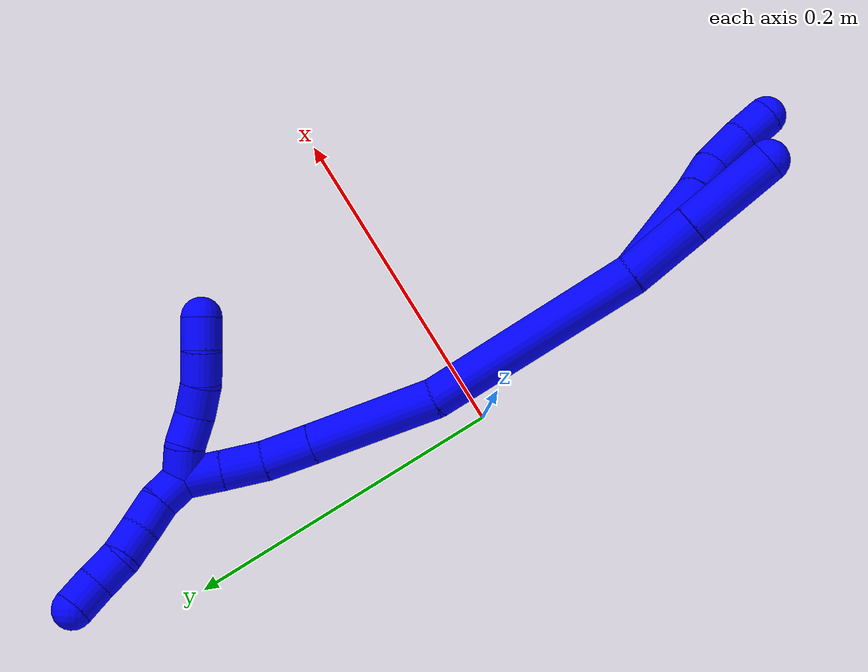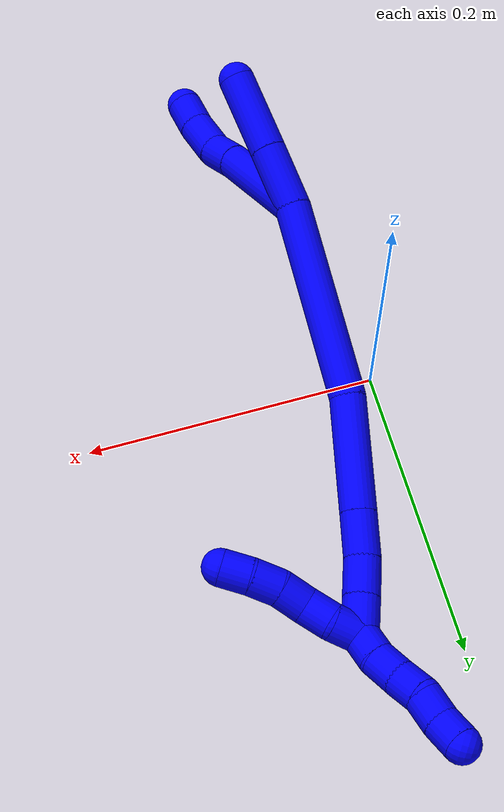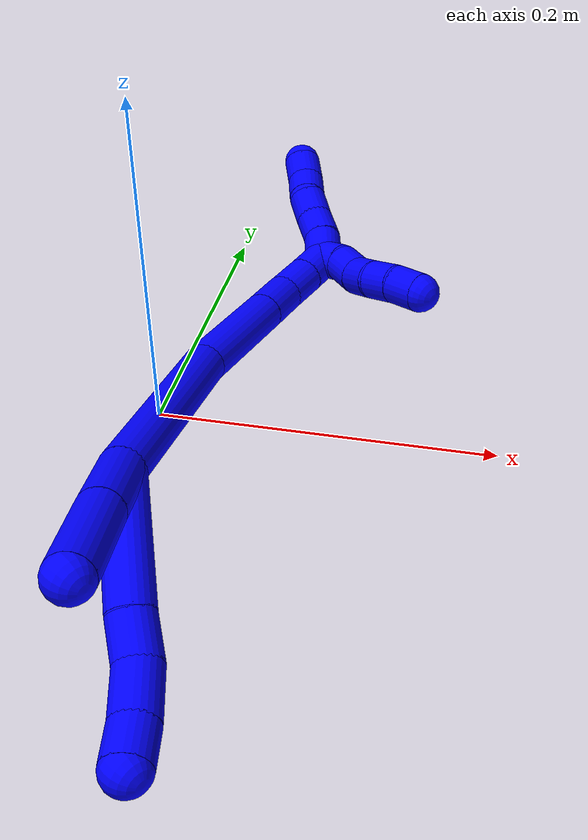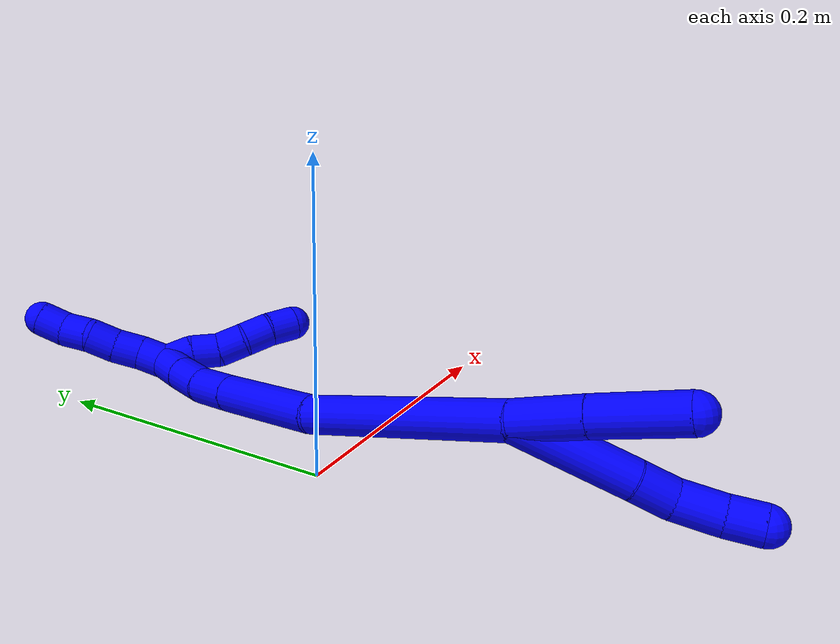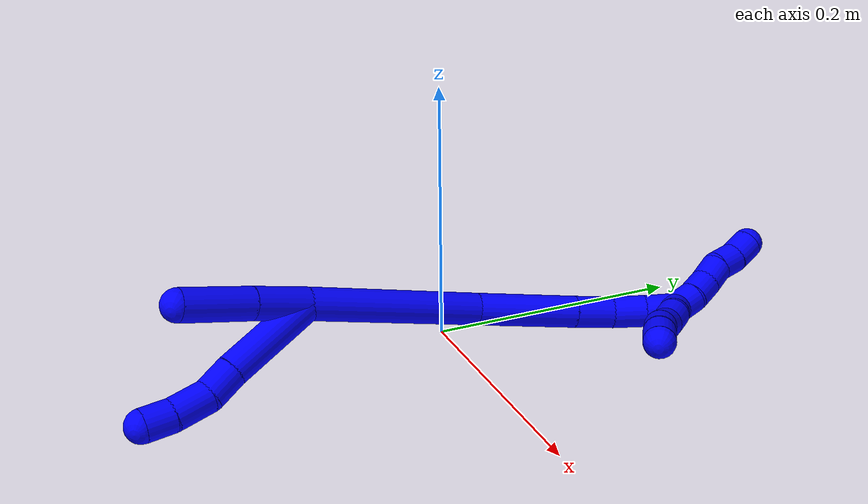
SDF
<sdf version="1.7">
 <world name="default">
  <model name="1">
   <static>0</static>
   <link name="1">
    <collision name="collision-cylinder-e_1_2_8">
     <pose>0.013427 -0.020258 0.02851 0.617774 0.366557 0.118159</pose>
     <geometry><cylinder><radius>0.0125</radius><length>0.074926</length></cylinder></geometry>
     <surface>
      <friction><ode><mu>1.16</mu><mu2>1.16</mu2><slip1>0</slip1><slip2>0</slip2></ode></friction>
      <contact><ode><kp>1e+06</kp><kd>1</kd><max_vel>0</max_vel><min_depth>0.001</min_depth></ode></contact>
     </surface>
    </collision>
    <visual name="visual-cylinder-e_1_2_8">
     <pose>0.013427 -0.020258 0.02851 0.617774 0.366557 0.118159</pose>
     <geometry><cylinder><radius>0.0125</radius><length>0.074926</length></cylinder></geometry>
     <material><ambient>0 0 1 1</ambient></material>
    </visual>
    <collision name="collision-cylinder-e_2_8_9">
     <pose>0.031787 -0.046164 0.066571 0.534077 0.418345 0.116016</pose>
     <geometry><cylinder><radius>0.0125</radius><length>0.024288</length></cylinder></geometry>
     <surface>
      <friction><ode><mu>1.16</mu><mu2>1.16</mu2><slip1>0</slip1><slip2>0</slip2></ode></friction>
      <contact><ode><kp>1e+06</kp><kd>1</kd><max_vel>0</max_vel><min_depth>0.001</min_depth></ode></contact>
     </surface>
    </collision>
    <visual name="visual-cylinder-e_2_8_9">
     <pose>0.031787 -0.046164 0.066571 0.534077 0.418345 0.116016</pose>
     <geometry><cylinder><radius>0.0125</radius><length>0.024288</length></cylinder></geometry>
     <material><ambient>0 0 1 1</ambient></material>
    </visual>
    <collision name="collision-cylinder-e_3_9_10">
     <pose>0.038983 -0.061125 0.086797 0.717321 0.158347 0.059467</pose>
     <geometry><cylinder><radius>0.0125</radius><length>0.028689</length></cylinder></geometry>
     <surface>
      <friction><ode><mu>1.16</mu><mu2>1.16</mu2><slip1>0</slip1><slip2>0</slip2></ode></friction>
      <contact><ode><kp>1e+06</kp><kd>1</kd><max_vel>0</max_vel><min_depth>0.001</min_depth></ode></contact>
     </surface>
    </collision>
    <visual name="visual-cylinder-e_3_9_10">
     <pose>0.038983 -0.061125 0.086797 0.717321 0.158347 0.059467</pose>
     <geometry><cylinder><radius>0.0125</radius><length>0.028689</length></cylinder></geometry>
     <material><ambient>0 0 1 1</ambient></material>
    </visual>
    <collision name="collision-cylinder-e_4_10_6">
     <pose>0.041461 -0.078334 0.105195 0.796494 0.0196 0.008246</pose>
     <geometry><cylinder><radius>0.0125</radius><length>0.022097</length></cylinder></geometry>
     <surface>
      <friction><ode><mu>1.16</mu><mu2>1.16</mu2><slip1>0</slip1><slip2>0</slip2></ode></friction>
      <contact><ode><kp>1e+06</kp><kd>1</kd><max_vel>0</max_vel><min_depth>0.001</min_depth></ode></contact>
     </surface>
    </collision>
    <visual name="visual-cylinder-e_4_10_6">
     <pose>0.041461 -0.078334 0.105195 0.796494 0.0196 0.008246</pose>
     <geometry><cylinder><radius>0.0125</radius><length>0.022097</length></cylinder></geometry>
     <material><ambient>0 0 1 1</ambient></material>
    </visual>
    <collision name="collision-cylinder-e_1_2_11">
     <pose>-0.006325 -0.015392 0.014365 0.81987 -0.291863 -0.127565</pose>
     <geometry><cylinder><radius>0.0125</radius><length>0.043967</length></cylinder></geometry>
     <surface>
      <friction><ode><mu>1.16</mu><mu2>1.16</mu2><slip1>0</slip1><slip2>0</slip2></ode></friction>
      <contact><ode><kp>1e+06</kp><kd>1</kd><max_vel>0</max_vel><min_depth>0.001</min_depth></ode></contact>
     </surface>
    </collision>
    <visual name="visual-cylinder-e_1_2_11">
     <pose>-0.006325 -0.015392 0.014365 0.81987 -0.291863 -0.127565</pose>
     <geometry><cylinder><radius>0.0125</radius><length>0.043967</length></cylinder></geometry>
     <material><ambient>0 0 1 1</ambient></material>
    </visual>
    <collision name="collision-cylinder-e_2_11_5">
     <pose>-0.019967 -0.050532 0.047207 0.818656 -0.264211 -0.115167</pose>
     <geometry><cylinder><radius>0.0125</radius><length>0.056033</length></cylinder></geometry>
     <surface>
      <friction><ode><mu>1.16</mu><mu2>1.16</mu2><slip1>0</slip1><slip2>0</slip2></ode></friction>
      <contact><ode><kp>1e+06</kp><kd>1</kd><max_vel>0</max_vel><min_depth>0.001</min_depth></ode></contact>
     </surface>
    </collision>
    <visual name="visual-cylinder-e_2_11_5">
     <pose>-0.019967 -0.050532 0.047207 0.818656 -0.264211 -0.115167</pose>
     <geometry><cylinder><radius>0.0125</radius><length>0.056033</length></cylinder></geometry>
     <material><ambient>0 0 1 1</ambient></material>
    </visual>
    <collision name="collision-cylinder-e_1_2_12">
     <pose>0.018118 0.054744 -0.038272 -2.18092 0.264875 -0.500629</pose>
     <geometry><cylinder><radius>0.0125</radius><length>0.138419</length></cylinder></geometry>
     <surface>
      <friction><ode><mu>1.16</mu><mu2>1.16</mu2><slip1>0</slip1><slip2>0</slip2></ode></friction>
      <contact><ode><kp>1e+06</kp><kd>1</kd><max_vel>0</max_vel><min_depth>0.001</min_depth></ode></contact>
     </surface>
    </collision>
    <visual name="visual-cylinder-e_1_2_12">
     <pose>0.018118 0.054744 -0.038272 -2.18092 0.264875 -0.500629</pose>
     <geometry><cylinder><radius>0.0125</radius><length>0.138419</length></cylinder></geometry>
     <material><ambient>0 0 1 1</ambient></material>
    </visual>
    <collision name="collision-cylinder-e_2_12_13">
     <pose>0.043162 0.145424 -0.092051 -1.97817 0.175128 -0.265419</pose>
     <geometry><cylinder><radius>0.0125</radius><length>0.079492</length></cylinder></geometry>
     <surface>
      <friction><ode><mu>1.16</mu><mu2>1.16</mu2><slip1>0</slip1><slip2>0</slip2></ode></friction>
      <contact><ode><kp>1e+06</kp><kd>1</kd><max_vel>0</max_vel><min_depth>0.001</min_depth></ode></contact>
     </surface>
    </collision>
    <visual name="visual-cylinder-e_2_12_13">
     <pose>0.043162 0.145424 -0.092051 -1.97817 0.175128 -0.265419</pose>
     <geometry><cylinder><radius>0.0125</radius><length>0.079492</length></cylinder></geometry>
     <material><ambient>0 0 1 1</ambient></material>
    </visual>
    <collision name="collision-cylinder-e_3_13_14">
     <pose>0.052492 0.195379 -0.11349 -1.97117 0.156712 -0.23588</pose>
     <geometry><cylinder><radius>0.0125</radius><length>0.030825</length></cylinder></geometry>
     <surface>
      <friction><ode><mu>1.16</mu><mu2>1.16</mu2><slip1>0</slip1><slip2>0</slip2></ode></friction>
      <contact><ode><kp>1e+06</kp><kd>1</kd><max_vel>0</max_vel><min_depth>0.001</min_depth></ode></contact>
     </surface>
    </collision>
    <visual name="visual-cylinder-e_3_13_14">
     <pose>0.052492 0.195379 -0.11349 -1.97117 0.156712 -0.23588</pose>
     <geometry><cylinder><radius>0.0125</radius><length>0.030825</length></cylinder></geometry>
     <material><ambient>0 0 1 1</ambient></material>
    </visual>
    <collision name="collision-cylinder-e_4_14_15">
     <pose>0.055508 0.222104 -0.12312 -1.85389 0.046093 -0.061405</pose>
     <geometry><cylinder><radius>0.0125</radius><length>0.026492</length></cylinder></geometry>
     <surface>
      <friction><ode><mu>1.16</mu><mu2>1.16</mu2><slip1>0</slip1><slip2>0</slip2></ode></friction>
      <contact><ode><kp>1e+06</kp><kd>1</kd><max_vel>0</max_vel><min_depth>0.001</min_depth></ode></contact>
     </surface>
    </collision>
    <visual name="visual-cylinder-e_4_14_15">
     <pose>0.055508 0.222104 -0.12312 -1.85389 0.046093 -0.061405</pose>
     <geometry><cylinder><radius>0.0125</radius><length>0.026492</length></cylinder></geometry>
     <material><ambient>0 0 1 1</ambient></material>
    </visual>
    <collision name="collision-cylinder-e_5_15_1">
     <pose>0.056154 0.24675 -0.130105 -1.83959 0.002898 -0.003805</pose>
     <geometry><cylinder><radius>0.0125</radius><length>0.024772</length></cylinder></geometry>
     <surface>
      <friction><ode><mu>1.16</mu><mu2>1.16</mu2><slip1>0</slip1><slip2>0</slip2></ode></friction>
      <contact><ode><kp>1e+06</kp><kd>1</kd><max_vel>0</max_vel><min_depth>0.001</min_depth></ode></contact>
     </surface>
    </collision>
    <visual name="visual-cylinder-e_5_15_1">
     <pose>0.056154 0.24675 -0.130105 -1.83959 0.002898 -0.003805</pose>
     <geometry><cylinder><radius>0.0125</radius><length>0.024772</length></cylinder></geometry>
     <material><ambient>0 0 1 1</ambient></material>
    </visual>
    <collision name="collision-cylinder-e_1_1_16">
     <pose>0.05353 0.258477 -0.123757 0.022206 -0.269211 -0.003007</pose>
     <geometry><cylinder><radius>0.0125</radius><length>0.02</length></cylinder></geometry>
     <surface>
      <friction><ode><mu>1.16</mu><mu2>1.16</mu2><slip1>0</slip1><slip2>0</slip2></ode></friction>
      <contact><ode><kp>1e+06</kp><kd>1</kd><max_vel>0</max_vel><min_depth>0.001</min_depth></ode></contact>
     </surface>
    </collision>
    <visual name="visual-cylinder-e_1_1_16">
     <pose>0.05353 0.258477 -0.123757 0.022206 -0.269211 -0.003007</pose>
     <geometry><cylinder><radius>0.0125</radius><length>0.02</length></cylinder></geometry>
     <material><ambient>0 0 1 1</ambient></material>
    </visual>
    <collision name="collision-cylinder-e_2_16_17">
     <pose>0.050448 0.255948 -0.1044 0.233812 -0.042263 -0.004964</pose>
     <geometry><cylinder><radius>0.0125</radius><length>0.02</length></cylinder></geometry>
     <surface>
      <friction><ode><mu>1.16</mu><mu2>1.16</mu2><slip1>0</slip1><slip2>0</slip2></ode></friction>
      <contact><ode><kp>1e+06</kp><kd>1</kd><max_vel>0</max_vel><min_depth>0.001</min_depth></ode></contact>
     </surface>
    </collision>
    <visual name="visual-cylinder-e_2_16_17">
     <pose>0.050448 0.255948 -0.1044 0.233812 -0.042263 -0.004964</pose>
     <geometry><cylinder><radius>0.0125</radius><length>0.02</length></cylinder></geometry>
     <material><ambient>0 0 1 1</ambient></material>
    </visual>
    <collision name="collision-cylinder-e_3_17_18">
     <pose>0.046568 0.252048 -0.085433 0.169829 -0.353027 -0.030363</pose>
     <geometry><cylinder><radius>0.0125</radius><length>0.02</length></cylinder></geometry>
     <surface>
      <friction><ode><mu>1.16</mu><mu2>1.16</mu2><slip1>0</slip1><slip2>0</slip2></ode></friction>
      <contact><ode><kp>1e+06</kp><kd>1</kd><max_vel>0</max_vel><min_depth>0.001</min_depth></ode></contact>
     </surface>
    </collision>
    <visual name="visual-cylinder-e_3_17_18">
     <pose>0.046568 0.252048 -0.085433 0.169829 -0.353027 -0.030363</pose>
     <geometry><cylinder><radius>0.0125</radius><length>0.02</length></cylinder></geometry>
     <material><ambient>0 0 1 1</ambient></material>
    </visual>
    <collision name="collision-cylinder-e_4_18_19">
     <pose>0.040483 0.25076 -0.066541 -0.030887 -0.265924 0.004131</pose>
     <geometry><cylinder><radius>0.0125</radius><length>0.02</length></cylinder></geometry>
     <surface>
      <friction><ode><mu>1.16</mu><mu2>1.16</mu2><slip1>0</slip1><slip2>0</slip2></ode></friction>
      <contact><ode><kp>1e+06</kp><kd>1</kd><max_vel>0</max_vel><min_depth>0.001</min_depth></ode></contact>
     </surface>
    </collision>
    <visual name="visual-cylinder-e_4_18_19">
     <pose>0.040483 0.25076 -0.066541 -0.030887 -0.265924 0.004131</pose>
     <geometry><cylinder><radius>0.0125</radius><length>0.02</length></cylinder></geometry>
     <material><ambient>0 0 1 1</ambient></material>
    </visual>
    <collision name="collision-cylinder-e_5_19_4">
     <pose>0.036807 0.251752 -0.046976 -0.069831 -0.104954 0.003669</pose>
     <geometry><cylinder><radius>0.0125</radius><length>0.02</length></cylinder></geometry>
     <surface>
      <friction><ode><mu>1.16</mu><mu2>1.16</mu2><slip1>0</slip1><slip2>0</slip2></ode></friction>
      <contact><ode><kp>1e+06</kp><kd>1</kd><max_vel>0</max_vel><min_depth>0.001</min_depth></ode></contact>
     </surface>
    </collision>
    <visual name="visual-cylinder-e_5_19_4">
     <pose>0.036807 0.251752 -0.046976 -0.069831 -0.104954 0.003669</pose>
     <geometry><cylinder><radius>0.0125</radius><length>0.02</length></cylinder></geometry>
     <material><ambient>0 0 1 1</ambient></material>
    </visual>
    <collision name="collision-cylinder-e_1_1_20">
     <pose>0.054108 0.265082 -0.140799 -2.4296 -0.209726 0.55167</pose>
     <geometry><cylinder><radius>0.0125</radius><length>0.02</length></cylinder></geometry>
     <surface>
      <friction><ode><mu>1.16</mu><mu2>1.16</mu2><slip1>0</slip1><slip2>0</slip2></ode></friction>
      <contact><ode><kp>1e+06</kp><kd>1</kd><max_vel>0</max_vel><min_depth>0.001</min_depth></ode></contact>
     </surface>
    </collision>
    <visual name="visual-cylinder-e_1_1_20">
     <pose>0.054108 0.265082 -0.140799 -2.4296 -0.209726 0.55167</pose>
     <geometry><cylinder><radius>0.0125</radius><length>0.02</length></cylinder></geometry>
     <material><ambient>0 0 1 1</ambient></material>
    </visual>
    <collision name="collision-cylinder-e_2_20_21">
     <pose>0.049725 0.275934 -0.156852 -2.66522 -0.232263 0.895816</pose>
     <geometry><cylinder><radius>0.0125</radius><length>0.02</length></cylinder></geometry>
     <surface>
      <friction><ode><mu>1.16</mu><mu2>1.16</mu2><slip1>0</slip1><slip2>0</slip2></ode></friction>
      <contact><ode><kp>1e+06</kp><kd>1</kd><max_vel>0</max_vel><min_depth>0.001</min_depth></ode></contact>
     </surface>
    </collision>
    <visual name="visual-cylinder-e_2_20_21">
     <pose>0.049725 0.275934 -0.156852 -2.66522 -0.232263 0.895816</pose>
     <geometry><cylinder><radius>0.0125</radius><length>0.02</length></cylinder></geometry>
     <material><ambient>0 0 1 1</ambient></material>
    </visual>
    <collision name="collision-cylinder-e_3_21_22">
     <pose>0.043798 0.284684 -0.173776 -2.66361 -0.370871 1.31226</pose>
     <geometry><cylinder><radius>0.0125</radius><length>0.02</length></cylinder></geometry>
     <surface>
      <friction><ode><mu>1.16</mu><mu2>1.16</mu2><slip1>0</slip1><slip2>0</slip2></ode></friction>
      <contact><ode><kp>1e+06</kp><kd>1</kd><max_vel>0</max_vel><min_depth>0.001</min_depth></ode></contact>
     </surface>
    </collision>
    <visual name="visual-cylinder-e_3_21_22">
     <pose>0.043798 0.284684 -0.173776 -2.66361 -0.370871 1.31226</pose>
     <geometry><cylinder><radius>0.0125</radius><length>0.02</length></cylinder></geometry>
     <material><ambient>0 0 1 1</ambient></material>
    </visual>
    <collision name="collision-cylinder-e_4_22_23">
     <pose>0.039248 0.295344 -0.189701 -2.44702 -0.092798 0.25517</pose>
     <geometry><cylinder><radius>0.0125</radius><length>0.02</length></cylinder></geometry>
     <surface>
      <friction><ode><mu>1.16</mu><mu2>1.16</mu2><slip1>0</slip1><slip2>0</slip2></ode></friction>
      <contact><ode><kp>1e+06</kp><kd>1</kd><max_vel>0</max_vel><min_depth>0.001</min_depth></ode></contact>
     </surface>
    </collision>
    <visual name="visual-cylinder-e_4_22_23">
     <pose>0.039248 0.295344 -0.189701 -2.44702 -0.092798 0.25517</pose>
     <geometry><cylinder><radius>0.0125</radius><length>0.02</length></cylinder></geometry>
     <material><ambient>0 0 1 1</ambient></material>
    </visual>
    <collision name="collision-cylinder-e_5_23_3">
     <pose>0.035046 0.307168 -0.205069 -2.52661 -0.333675 0.975179</pose>
     <geometry><cylinder><radius>0.0125</radius><length>0.02</length></cylinder></geometry>
     <surface>
      <friction><ode><mu>1.16</mu><mu2>1.16</mu2><slip1>0</slip1><slip2>0</slip2></ode></friction>
      <contact><ode><kp>1e+06</kp><kd>1</kd><max_vel>0</max_vel><min_depth>0.001</min_depth></ode></contact>
     </surface>
    </collision>
    <visual name="visual-cylinder-e_5_23_3">
     <pose>0.035046 0.307168 -0.205069 -2.52661 -0.333675 0.975179</pose>
     <geometry><cylinder><radius>0.0125</radius><length>0.02</length></cylinder></geometry>
     <material><ambient>0 0 1 1</ambient></material>
    </visual>
    <collision name="collision-sphere-3">
     <pose>0.031771 0.312619 -0.212786 0 -0 0</pose>
     <geometry><sphere><radius>0.0125</radius></sphere></geometry>
     <surface>
      <friction><ode><mu>1.16</mu><mu2>1.16</mu2><slip1>0</slip1><slip2>0</slip2></ode></friction>
      <contact><ode><kp>1e+06</kp><kd>1</kd><max_vel>0</max_vel><min_depth>0.001</min_depth></ode></contact>
     </surface>
    </collision>
    <visual name="visual-sphere-3">
     <pose>0.031771 0.312619 -0.212786 0 -0 0</pose>
     <geometry><sphere><radius>0.0125</radius></sphere></geometry>
     <material><ambient>0 0 1 1</ambient></material>
    </visual>
    <collision name="collision-sphere-23">
     <pose>0.038321 0.301717 -0.197352 0 -0 0</pose>
     <geometry><sphere><radius>0.0125</radius></sphere></geometry>
     <surface>
      <friction><ode><mu>1.16</mu><mu2>1.16</mu2><slip1>0</slip1><slip2>0</slip2></ode></friction>
      <contact><ode><kp>1e+06</kp><kd>1</kd><max_vel>0</max_vel><min_depth>0.001</min_depth></ode></contact>
     </surface>
    </collision>
    <visual name="visual-sphere-23">
     <pose>0.038321 0.301717 -0.197352 0 -0 0</pose>
     <geometry><sphere><radius>0.0125</radius></sphere></geometry>
     <material><ambient>0 0 1 1</ambient></material>
    </visual>
    <collision name="collision-sphere-22">
     <pose>0.040174 0.288971 -0.182051 0 -0 0</pose>
     <geometry><sphere><radius>0.0125</radius></sphere></geometry>
     <surface>
      <friction><ode><mu>1.16</mu><mu2>1.16</mu2><slip1>0</slip1><slip2>0</slip2></ode></friction>
      <contact><ode><kp>1e+06</kp><kd>1</kd><max_vel>0</max_vel><min_depth>0.001</min_depth></ode></contact>
     </surface>
    </collision>
    <visual name="visual-sphere-22">
     <pose>0.040174 0.288971 -0.182051 0 -0 0</pose>
     <geometry><sphere><radius>0.0125</radius></sphere></geometry>
     <material><ambient>0 0 1 1</ambient></material>
    </visual>
    <collision name="collision-sphere-21">
     <pose>0.047423 0.280397 -0.1655 0 -0 0</pose>
     <geometry><sphere><radius>0.0125</radius></sphere></geometry>
     <surface>
      <friction><ode><mu>1.16</mu><mu2>1.16</mu2><slip1>0</slip1><slip2>0</slip2></ode></friction>
      <contact><ode><kp>1e+06</kp><kd>1</kd><max_vel>0</max_vel><min_depth>0.001</min_depth></ode></contact>
     </surface>
    </collision>
    <visual name="visual-sphere-21">
     <pose>0.047423 0.280397 -0.1655 0 -0 0</pose>
     <geometry><sphere><radius>0.0125</radius></sphere></geometry>
     <material><ambient>0 0 1 1</ambient></material>
    </visual>
    <collision name="collision-sphere-20">
     <pose>0.052026 0.271472 -0.148204 0 -0 0</pose>
     <geometry><sphere><radius>0.0125</radius></sphere></geometry>
     <surface>
      <friction><ode><mu>1.16</mu><mu2>1.16</mu2><slip1>0</slip1><slip2>0</slip2></ode></friction>
      <contact><ode><kp>1e+06</kp><kd>1</kd><max_vel>0</max_vel><min_depth>0.001</min_depth></ode></contact>
     </surface>
    </collision>
    <visual name="visual-sphere-20">
     <pose>0.052026 0.271472 -0.148204 0 -0 0</pose>
     <geometry><sphere><radius>0.0125</radius></sphere></geometry>
     <material><ambient>0 0 1 1</ambient></material>
    </visual>
    <collision name="collision-sphere-4">
     <pose>0.03576 0.252445 -0.037055 0 -0 0</pose>
     <geometry><sphere><radius>0.0125</radius></sphere></geometry>
     <surface>
      <friction><ode><mu>1.16</mu><mu2>1.16</mu2><slip1>0</slip1><slip2>0</slip2></ode></friction>
      <contact><ode><kp>1e+06</kp><kd>1</kd><max_vel>0</max_vel><min_depth>0.001</min_depth></ode></contact>
     </surface>
    </collision>
    <visual name="visual-sphere-4">
     <pose>0.03576 0.252445 -0.037055 0 -0 0</pose>
     <geometry><sphere><radius>0.0125</radius></sphere></geometry>
     <material><ambient>0 0 1 1</ambient></material>
    </visual>
    <collision name="collision-sphere-11">
     <pose>-0.012651 -0.030783 0.028731 0 -0 0</pose>
     <geometry><sphere><radius>0.0125</radius></sphere></geometry>
     <surface>
      <friction><ode><mu>1.16</mu><mu2>1.16</mu2><slip1>0</slip1><slip2>0</slip2></ode></friction>
      <contact><ode><kp>1e+06</kp><kd>1</kd><max_vel>0</max_vel><min_depth>0.001</min_depth></ode></contact>
     </surface>
    </collision>
    <visual name="visual-sphere-11">
     <pose>-0.012651 -0.030783 0.028731 0 -0 0</pose>
     <geometry><sphere><radius>0.0125</radius></sphere></geometry>
     <material><ambient>0 0 1 1</ambient></material>
    </visual>
    <collision name="collision-sphere-6">
     <pose>0.041678 -0.086231 0.112919 0 -0 0</pose>
     <geometry><sphere><radius>0.0125</radius></sphere></geometry>
     <surface>
      <friction><ode><mu>1.16</mu><mu2>1.16</mu2><slip1>0</slip1><slip2>0</slip2></ode></friction>
      <contact><ode><kp>1e+06</kp><kd>1</kd><max_vel>0</max_vel><min_depth>0.001</min_depth></ode></contact>
     </surface>
    </collision>
    <visual name="visual-sphere-6">
     <pose>0.041678 -0.086231 0.112919 0 -0 0</pose>
     <geometry><sphere><radius>0.0125</radius></sphere></geometry>
     <material><ambient>0 0 1 1</ambient></material>
    </visual>
    <collision name="collision-sphere-10">
     <pose>0.041245 -0.070437 0.097471 0 -0 0</pose>
     <geometry><sphere><radius>0.0125</radius></sphere></geometry>
     <surface>
      <friction><ode><mu>1.16</mu><mu2>1.16</mu2><slip1>0</slip1><slip2>0</slip2></ode></friction>
      <contact><ode><kp>1e+06</kp><kd>1</kd><max_vel>0</max_vel><min_depth>0.001</min_depth></ode></contact>
     </surface>
    </collision>
    <visual name="visual-sphere-10">
     <pose>0.041245 -0.070437 0.097471 0 -0 0</pose>
     <geometry><sphere><radius>0.0125</radius></sphere></geometry>
     <material><ambient>0 0 1 1</ambient></material>
    </visual>
    <collision name="collision-sphere-9">
     <pose>0.036721 -0.051813 0.076123 0 -0 0</pose>
     <geometry><sphere><radius>0.0125</radius></sphere></geometry>
     <surface>
      <friction><ode><mu>1.16</mu><mu2>1.16</mu2><slip1>0</slip1><slip2>0</slip2></ode></friction>
      <contact><ode><kp>1e+06</kp><kd>1</kd><max_vel>0</max_vel><min_depth>0.001</min_depth></ode></contact>
     </surface>
    </collision>
    <visual name="visual-sphere-9">
     <pose>0.036721 -0.051813 0.076123 0 -0 0</pose>
     <geometry><sphere><radius>0.0125</radius></sphere></geometry>
     <material><ambient>0 0 1 1</ambient></material>
    </visual>
    <collision name="collision-sphere-2">
     <geometry><sphere><radius>0.0125</radius></sphere></geometry>
     <surface>
      <friction><ode><mu>1.16</mu><mu2>1.16</mu2><slip1>0</slip1><slip2>0</slip2></ode></friction>
      <contact><ode><kp>1e+06</kp><kd>1</kd><max_vel>0</max_vel><min_depth>0.001</min_depth></ode></contact>
     </surface>
    </collision>
    <visual name="visual-sphere-2">
     <geometry><sphere><radius>0.0125</radius></sphere></geometry>
     <material><ambient>0 0 1 1</ambient></material>
    </visual>
    <collision name="collision-sphere-19">
     <pose>0.037855 0.251058 -0.056897 0 -0 0</pose>
     <geometry><sphere><radius>0.0125</radius></sphere></geometry>
     <surface>
      <friction><ode><mu>1.16</mu><mu2>1.16</mu2><slip1>0</slip1><slip2>0</slip2></ode></friction>
      <contact><ode><kp>1e+06</kp><kd>1</kd><max_vel>0</max_vel><min_depth>0.001</min_depth></ode></contact>
     </surface>
    </collision>
    <visual name="visual-sphere-19">
     <pose>0.037855 0.251058 -0.056897 0 -0 0</pose>
     <geometry><sphere><radius>0.0125</radius></sphere></geometry>
     <material><ambient>0 0 1 1</ambient></material>
    </visual>
    <collision name="collision-sphere-8">
     <pose>0.026854 -0.040516 0.05702 0 -0 0</pose>
     <geometry><sphere><radius>0.0125</radius></sphere></geometry>
     <surface>
      <friction><ode><mu>1.16</mu><mu2>1.16</mu2><slip1>0</slip1><slip2>0</slip2></ode></friction>
      <contact><ode><kp>1e+06</kp><kd>1</kd><max_vel>0</max_vel><min_depth>0.001</min_depth></ode></contact>
     </surface>
    </collision>
    <visual name="visual-sphere-8">
     <pose>0.026854 -0.040516 0.05702 0 -0 0</pose>
     <geometry><sphere><radius>0.0125</radius></sphere></geometry>
     <material><ambient>0 0 1 1</ambient></material>
    </visual>
    <collision name="collision-sphere-5">
     <pose>-0.027284 -0.07028 0.065684 0 -0 0</pose>
     <geometry><sphere><radius>0.0125</radius></sphere></geometry>
     <surface>
      <friction><ode><mu>1.16</mu><mu2>1.16</mu2><slip1>0</slip1><slip2>0</slip2></ode></friction>
      <contact><ode><kp>1e+06</kp><kd>1</kd><max_vel>0</max_vel><min_depth>0.001</min_depth></ode></contact>
     </surface>
    </collision>
    <visual name="visual-sphere-5">
     <pose>-0.027284 -0.07028 0.065684 0 -0 0</pose>
     <geometry><sphere><radius>0.0125</radius></sphere></geometry>
     <material><ambient>0 0 1 1</ambient></material>
    </visual>
    <collision name="collision-sphere-12">
     <pose>0.036237 0.109489 -0.076544 0 -0 0</pose>
     <geometry><sphere><radius>0.0125</radius></sphere></geometry>
     <surface>
      <friction><ode><mu>1.16</mu><mu2>1.16</mu2><slip1>0</slip1><slip2>0</slip2></ode></friction>
      <contact><ode><kp>1e+06</kp><kd>1</kd><max_vel>0</max_vel><min_depth>0.001</min_depth></ode></contact>
     </surface>
    </collision>
    <visual name="visual-sphere-12">
     <pose>0.036237 0.109489 -0.076544 0 -0 0</pose>
     <geometry><sphere><radius>0.0125</radius></sphere></geometry>
     <material><ambient>0 0 1 1</ambient></material>
    </visual>
    <collision name="collision-sphere-13">
     <pose>0.050087 0.181359 -0.107557 0 -0 0</pose>
     <geometry><sphere><radius>0.0125</radius></sphere></geometry>
     <surface>
      <friction><ode><mu>1.16</mu><mu2>1.16</mu2><slip1>0</slip1><slip2>0</slip2></ode></friction>
      <contact><ode><kp>1e+06</kp><kd>1</kd><max_vel>0</max_vel><min_depth>0.001</min_depth></ode></contact>
     </surface>
    </collision>
    <visual name="visual-sphere-13">
     <pose>0.050087 0.181359 -0.107557 0 -0 0</pose>
     <geometry><sphere><radius>0.0125</radius></sphere></geometry>
     <material><ambient>0 0 1 1</ambient></material>
    </visual>
    <collision name="collision-sphere-14">
     <pose>0.054898 0.209399 -0.119424 0 -0 0</pose>
     <geometry><sphere><radius>0.0125</radius></sphere></geometry>
     <surface>
      <friction><ode><mu>1.16</mu><mu2>1.16</mu2><slip1>0</slip1><slip2>0</slip2></ode></friction>
      <contact><ode><kp>1e+06</kp><kd>1</kd><max_vel>0</max_vel><min_depth>0.001</min_depth></ode></contact>
     </surface>
    </collision>
    <visual name="visual-sphere-14">
     <pose>0.054898 0.209399 -0.119424 0 -0 0</pose>
     <geometry><sphere><radius>0.0125</radius></sphere></geometry>
     <material><ambient>0 0 1 1</ambient></material>
    </visual>
    <collision name="collision-sphere-15">
     <pose>0.056118 0.234809 -0.126816 0 -0 0</pose>
     <geometry><sphere><radius>0.0125</radius></sphere></geometry>
     <surface>
      <friction><ode><mu>1.16</mu><mu2>1.16</mu2><slip1>0</slip1><slip2>0</slip2></ode></friction>
      <contact><ode><kp>1e+06</kp><kd>1</kd><max_vel>0</max_vel><min_depth>0.001</min_depth></ode></contact>
     </surface>
    </collision>
    <visual name="visual-sphere-15">
     <pose>0.056118 0.234809 -0.126816 0 -0 0</pose>
     <geometry><sphere><radius>0.0125</radius></sphere></geometry>
     <material><ambient>0 0 1 1</ambient></material>
    </visual>
    <collision name="collision-sphere-1">
     <pose>0.05619 0.258691 -0.133395 0 -0 0</pose>
     <geometry><sphere><radius>0.0125</radius></sphere></geometry>
     <surface>
      <friction><ode><mu>1.16</mu><mu2>1.16</mu2><slip1>0</slip1><slip2>0</slip2></ode></friction>
      <contact><ode><kp>1e+06</kp><kd>1</kd><max_vel>0</max_vel><min_depth>0.001</min_depth></ode></contact>
     </surface>
    </collision>
    <visual name="visual-sphere-1">
     <pose>0.05619 0.258691 -0.133395 0 -0 0</pose>
     <geometry><sphere><radius>0.0125</radius></sphere></geometry>
     <material><ambient>0 0 1 1</ambient></material>
    </visual>
    <collision name="collision-sphere-18">
     <pose>0.043111 0.250462 -0.076185 0 -0 0</pose>
     <geometry><sphere><radius>0.0125</radius></sphere></geometry>
     <surface>
      <friction><ode><mu>1.16</mu><mu2>1.16</mu2><slip1>0</slip1><slip2>0</slip2></ode></friction>
      <contact><ode><kp>1e+06</kp><kd>1</kd><max_vel>0</max_vel><min_depth>0.001</min_depth></ode></contact>
     </surface>
    </collision>
    <visual name="visual-sphere-18">
     <pose>0.043111 0.250462 -0.076185 0 -0 0</pose>
     <geometry><sphere><radius>0.0125</radius></sphere></geometry>
     <material><ambient>0 0 1 1</ambient></material>
    </visual>
    <collision name="collision-sphere-16">
     <pose>0.050871 0.258263 -0.11412 0 -0 0</pose>
     <geometry><sphere><radius>0.0125</radius></sphere></geometry>
     <surface>
      <friction><ode><mu>1.16</mu><mu2>1.16</mu2><slip1>0</slip1><slip2>0</slip2></ode></friction>
      <contact><ode><kp>1e+06</kp><kd>1</kd><max_vel>0</max_vel><min_depth>0.001</min_depth></ode></contact>
     </surface>
    </collision>
    <visual name="visual-sphere-16">
     <pose>0.050871 0.258263 -0.11412 0 -0 0</pose>
     <geometry><sphere><radius>0.0125</radius></sphere></geometry>
     <material><ambient>0 0 1 1</ambient></material>
    </visual>
    <collision name="collision-sphere-17">
     <pose>0.050026 0.253634 -0.094681 0 -0 0</pose>
     <geometry><sphere><radius>0.0125</radius></sphere></geometry>
     <surface>
      <friction><ode><mu>1.16</mu><mu2>1.16</mu2><slip1>0</slip1><slip2>0</slip2></ode></friction>
      <contact><ode><kp>1e+06</kp><kd>1</kd><max_vel>0</max_vel><min_depth>0.001</min_depth></ode></contact>
     </surface>
    </collision>
    <visual name="visual-sphere-17">
     <pose>0.050026 0.253634 -0.094681 0 -0 0</pose>
     <geometry><sphere><radius>0.0125</radius></sphere></geometry>
     <material><ambient>0 0 1 1</ambient></material>
    </visual>
    <inertial>
     <pose>0.029106 0.108625 -0.048826 0 -0 0</pose>
     <mass>0.75</mass>
     <inertia>
      <ixx>0.000212</ixx>
      <ixy>0</ixy>
      <ixz>0</ixz>
      <iyy>-0.000149</iyy>
      <iyz>0</iyz>
      <izz>-0.000256</izz>
     </inertia>
    </inertial>
   </link>
   <pose>0.022886 -0.115321 0.057732 1.85784 1.53075 1.24369</pose>
  </model>
 </world>
</sdf>
